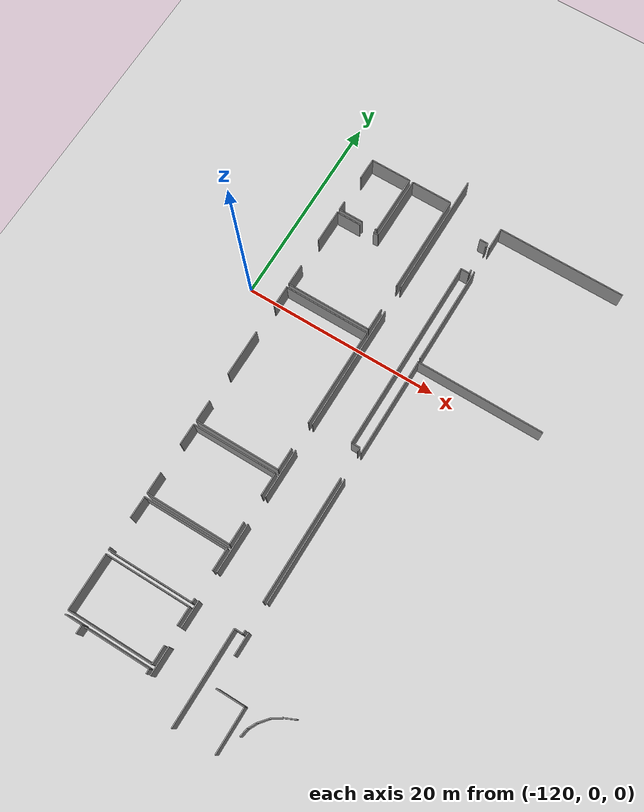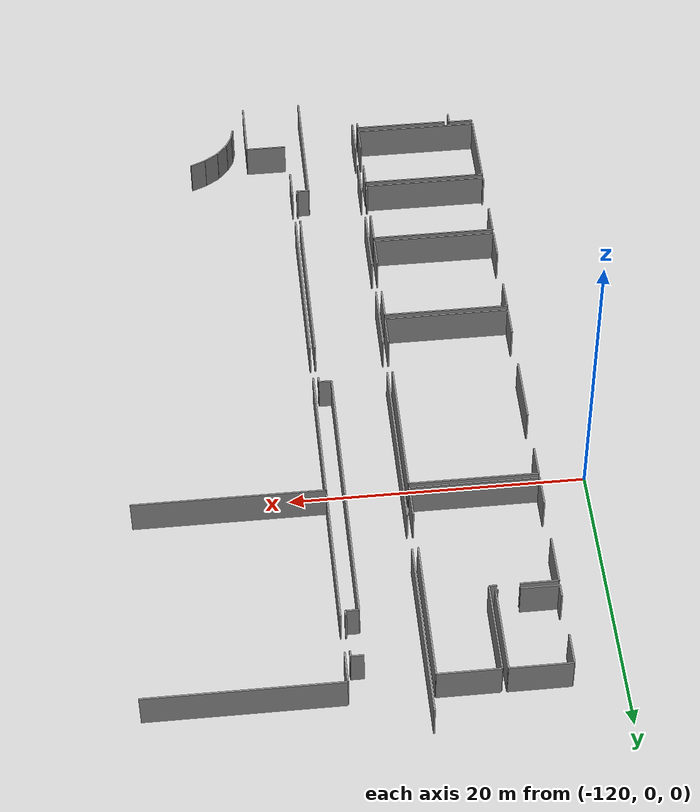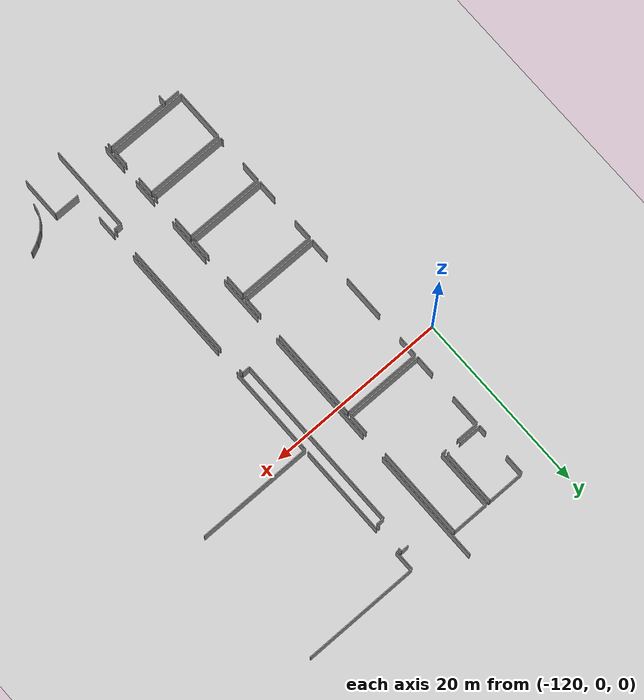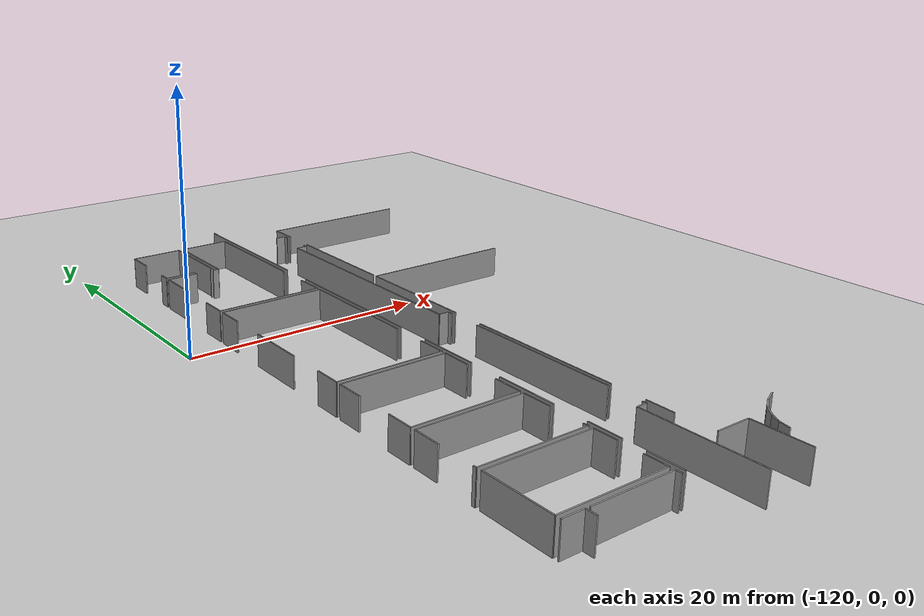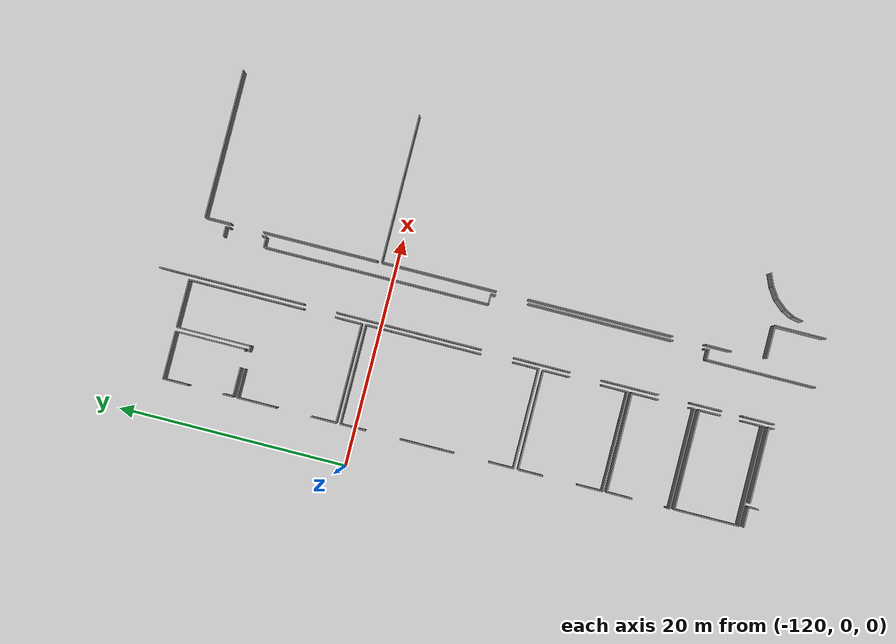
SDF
<sdf version="1.6">
 <world name="default">
  <model name="ground_plane">
   <static>1</static>
   <link name="link">
    <collision name="collision">
     <geometry><plane><normal>0 0 1</normal><size>100 100</size></plane></geometry>
     <surface><friction><ode><mu>100</mu><mu2>50</mu2></ode></friction></surface>
    </collision>
    <visual name="visual">
     <cast_shadows>0</cast_shadows>
     <geometry><plane><normal>0 0 1</normal><size>100 100</size></plane></geometry>
     <material>
      <script><uri>file://media/materials/scripts/gazebo.material</uri><name>Gazebo/Grey</name></script>
     </material>
    </visual>
   </link>
  </model>
  <model name="0510035519_A_40_1_102">
   <static>1</static>
   <link name="Wall_317">
    <collision name="Wall_317_Collision">
     <geometry><box><size>4.14436395984 0.1 2.5</size></box></geometry>
     <pose>2.07218197992 0 1.25 0 0 0</pose>
    </collision>
    <visual name="Wall_317_Visual">
     <pose>2.07218197992 0 1.25 0 0 0</pose>
     <geometry><box><size>4.14436395984 0.1 2.5</size></box></geometry>
     <material>
      <script><uri>file://media/materials/scripts/gazebo.material</uri><name>Gazebo/Grey</name></script>
      <ambient>1 1 1 1</ambient>
     </material>
    </visual>
    <pose>0.0147413902656 -51.9951709239 0 0 0 0.0</pose>
   </link>
   <link name="Wall_318">
    <collision name="Wall_318_Collision">
     <geometry><box><size>6.11538950311 0.1 2.5</size></box></geometry>
     <pose>3.05769475156 0 1.25 0 0 0</pose>
    </collision>
    <visual name="Wall_318_Visual">
     <pose>3.05769475156 0 1.25 0 0 0</pose>
     <geometry><box><size>6.11538950311 0.1 2.5</size></box></geometry>
     <material>
      <script><uri>file://media/materials/scripts/gazebo.material</uri><name>Gazebo/Grey</name></script>
      <ambient>1 1 1 1</ambient>
     </material>
    </visual>
    <pose>4.15910535011 -51.9951709239 0 0 0 -1.57079632679</pose>
   </link>
   <link name="Wall_319">
    <collision name="Wall_319_Collision">
     <geometry><box><size>0.174609226077 0.1 2.5</size></box></geometry>
     <pose>0.0873046130385 0 1.25 0 0 0</pose>
    </collision>
    <visual name="Wall_319_Visual">
     <pose>0.0873046130385 0 1.25 0 0 0</pose>
     <geometry><box><size>0.174609226077 0.1 2.5</size></box></geometry>
     <material>
      <script><uri>file://media/materials/scripts/gazebo.material</uri><name>Gazebo/Grey</name></script>
      <ambient>1 1 1 1</ambient>
     </material>
    </visual>
    <pose>4.15910535011 -58.110560427 0 0 0 3.14159265359</pose>
   </link>
   <link name="Wall_320">
    <collision name="Wall_320_Collision">
     <geometry><box><size>2.53577328758 0.1 2.5</size></box></geometry>
     <pose>1.26788664379 0 1.25 0 0 0</pose>
    </collision>
    <visual name="Wall_320_Visual">
     <pose>1.26788664379 0 1.25 0 0 0</pose>
     <geometry><box><size>2.53577328758 0.1 2.5</size></box></geometry>
     <material>
      <script><uri>file://media/materials/scripts/gazebo.material</uri><name>Gazebo/Grey</name></script>
      <ambient>1 1 1 1</ambient>
     </material>
    </visual>
    <pose>2.54314398272 -58.110560427 0 0 0 3.14159265359</pose>
   </link>
   <link name="Wall_321">
    <collision name="Wall_321_Collision">
     <geometry><box><size>0.91904943449 0.1 2.5</size></box></geometry>
     <pose>0.459524717245 0 1.25 0 0 0</pose>
    </collision>
    <visual name="Wall_321_Visual">
     <pose>0.459524717245 0 1.25 0 0 0</pose>
     <geometry><box><size>0.91904943449 0.1 2.5</size></box></geometry>
     <material>
      <script><uri>file://media/materials/scripts/gazebo.material</uri><name>Gazebo/Grey</name></script>
      <ambient>1 1 1 1</ambient>
     </material>
    </visual>
    <pose>0.0073706951328 -58.110560427 0 0 0 1.57079632679</pose>
   </link>
   <link name="Wall_322">
    <collision name="Wall_322_Collision">
     <geometry><box><size>2.16317194053 0.1 2.5</size></box></geometry>
     <pose>1.08158597026 0 1.25 0 0 0</pose>
    </collision>
    <visual name="Wall_322_Visual">
     <pose>1.08158597026 0 1.25 0 0 0</pose>
     <geometry><box><size>2.16317194053 0.1 2.5</size></box></geometry>
     <material>
      <script><uri>file://media/materials/scripts/gazebo.material</uri><name>Gazebo/Grey</name></script>
      <ambient>1 1 1 1</ambient>
     </material>
    </visual>
    <pose>0.0073706951328 -54.1814715974 0 0 0 1.57079632679</pose>
   </link>
   <link name="Wall_323">
    <collision name="Wall_323_Collision">
     <geometry><box><size>0.0242747901548 0.1 2.5</size></box></geometry>
     <pose>0.0121373950774 0 1.25 0 0 0</pose>
    </collision>
    <visual name="Wall_323_Visual">
     <pose>0.0121373950774 0 1.25 0 0 0</pose>
     <geometry><box><size>0.0242747901548 0.1 2.5</size></box></geometry>
     <material>
      <script><uri>file://media/materials/scripts/gazebo.material</uri><name>Gazebo/Grey</name></script>
      <ambient>1 1 1 1</ambient>
     </material>
    </visual>
    <pose>0.0073706951328 -52.0182996569 0 0 0 1.26229003106</pose>
   </link>
   <link name="Wall_324">
    <collision name="Wall_324_Collision">
     <geometry><box><size>2.18782564494 0.1 2.5</size></box></geometry>
     <pose>1.09391282247 0 1.25 0 0 0</pose>
    </collision>
    <visual name="Wall_324_Visual">
     <pose>1.09391282247 0 1.25 0 0 0</pose>
     <geometry><box><size>2.18782564494 0.1 2.5</size></box></geometry>
     <material>
      <script><uri>file://media/materials/scripts/gazebo.material</uri><name>Gazebo/Grey</name></script>
      <ambient>1 1 1 1</ambient>
     </material>
    </visual>
    <pose>0.00864150463845 -67.1170415555 0 0 0 1.57079632679</pose>
   </link>
   <link name="Wall_325">
    <collision name="Wall_325_Collision">
     <geometry><box><size>3.44592705553 0.1 2.5</size></box></geometry>
     <pose>1.72296352777 0 1.25 0 0 0</pose>
    </collision>
    <visual name="Wall_325_Visual">
     <pose>1.72296352777 0 1.25 0 0 0</pose>
     <geometry><box><size>3.44592705553 0.1 2.5</size></box></geometry>
     <material>
      <script><uri>file://media/materials/scripts/gazebo.material</uri><name>Gazebo/Grey</name></script>
      <ambient>1 1 1 1</ambient>
     </material>
    </visual>
    <pose>0.00864150463845 -61.9308679629 0 0 0 1.57079632679</pose>
   </link>
   <link name="Wall_326">
    <collision name="Wall_326_Collision">
     <geometry><box><size>2.52535264964 0.1 2.5</size></box></geometry>
     <pose>1.26267632482 0 1.25 0 0 0</pose>
    </collision>
    <visual name="Wall_326_Visual">
     <pose>1.26267632482 0 1.25 0 0 0</pose>
     <geometry><box><size>2.52535264964 0.1 2.5</size></box></geometry>
     <material>
      <script><uri>file://media/materials/scripts/gazebo.material</uri><name>Gazebo/Grey</name></script>
      <ambient>1 1 1 1</ambient>
     </material>
    </visual>
    <pose>0.00864150463845 -58.4849409074 0 0 0 0.0</pose>
   </link>
   <link name="Wall_327">
    <collision name="Wall_327_Collision">
     <geometry><box><size>0.508323802262 0.1 2.5</size></box></geometry>
     <pose>0.254161901131 0 1.25 0 0 0</pose>
    </collision>
    <visual name="Wall_327_Visual">
     <pose>0.254161901131 0 1.25 0 0 0</pose>
     <geometry><box><size>0.508323802262 0.1 2.5</size></box></geometry>
     <material>
      <script><uri>file://media/materials/scripts/gazebo.material</uri><name>Gazebo/Grey</name></script>
      <ambient>1 1 1 1</ambient>
     </material>
    </visual>
    <pose>4.0218579235 -58.4849409074 0 0 0 0.0</pose>
   </link>
   <link name="Wall_328">
    <collision name="Wall_328_Collision">
     <geometry><box><size>6.48087431694 0.1 2.5</size></box></geometry>
     <pose>3.24043715847 0 1.25 0 0 0</pose>
    </collision>
    <visual name="Wall_328_Visual">
     <pose>3.24043715847 0 1.25 0 0 0</pose>
     <geometry><box><size>6.48087431694 0.1 2.5</size></box></geometry>
     <material>
      <script><uri>file://media/materials/scripts/gazebo.material</uri><name>Gazebo/Grey</name></script>
      <ambient>1 1 1 1</ambient>
     </material>
    </visual>
    <pose>4.53018172576 -58.4849409074 0 0 0 1.57079632679</pose>
   </link>
   <link name="Wall_329">
    <collision name="Wall_329_Collision">
     <geometry><box><size>4.15427627399 0.1 2.5</size></box></geometry>
     <pose>2.07713813699 0 1.25 0 0 0</pose>
    </collision>
    <visual name="Wall_329_Visual">
     <pose>2.07713813699 0 1.25 0 0 0</pose>
     <geometry><box><size>4.15427627399 0.1 2.5</size></box></geometry>
     <material>
      <script><uri>file://media/materials/scripts/gazebo.material</uri><name>Gazebo/Grey</name></script>
      <ambient>1 1 1 1</ambient>
     </material>
    </visual>
    <pose>4.53018172576 -52.0040665904 0 0 0 0.0</pose>
   </link>
   <link name="Wall_330">
    <collision name="Wall_330_Collision">
     <geometry><box><size>10.0604905325 0.1 2.5</size></box></geometry>
     <pose>5.03024526623 0 1.25 0 0 0</pose>
    </collision>
    <visual name="Wall_330_Visual">
     <pose>5.03024526623 0 1.25 0 0 0</pose>
     <geometry><box><size>10.0604905325 0.1 2.5</size></box></geometry>
     <material>
      <script><uri>file://media/materials/scripts/gazebo.material</uri><name>Gazebo/Grey</name></script>
      <ambient>1 1 1 1</ambient>
     </material>
    </visual>
    <pose>8.68445799975 -52.0040665904 0 0 0 -1.57079632679</pose>
   </link>
   <link name="Wall_331">
    <collision name="Wall_331_Collision">
     <geometry><box><size>2.29457364341 0.1 2.5</size></box></geometry>
     <pose>1.14728682171 0 1.25 0 0 0</pose>
    </collision>
    <visual name="Wall_331_Visual">
     <pose>1.14728682171 0 1.25 0 0 0</pose>
     <geometry><box><size>2.29457364341 0.1 2.5</size></box></geometry>
     <material>
      <script><uri>file://media/materials/scripts/gazebo.material</uri><name>Gazebo/Grey</name></script>
      <ambient>1 1 1 1</ambient>
     </material>
    </visual>
    <pose>8.68445799975 -64.830346931 0 0 0 -1.57079632679</pose>
   </link>
   <link name="Wall_332">
    <collision name="Wall_332_Collision">
     <geometry><box><size>8.67582007281 0.1 2.5</size></box></geometry>
     <pose>4.3379100364 0 1.25 0 0 0</pose>
    </collision>
    <visual name="Wall_332_Visual">
     <pose>4.3379100364 0 1.25 0 0 0</pose>
     <geometry><box><size>8.67582007281 0.1 2.5</size></box></geometry>
     <material>
      <script><uri>file://media/materials/scripts/gazebo.material</uri><name>Gazebo/Grey</name></script>
      <ambient>1 1 1 1</ambient>
     </material>
    </visual>
    <pose>8.68445799975 -67.1249205744 0 0 0 3.14068449506</pose>
   </link>
   <link name="Wall_333">
    <collision name="Wall_333_Collision">
     <geometry><box><size>2.16978014996 0.1 2.5</size></box></geometry>
     <pose>1.08489007498 0 1.25 0 0 0</pose>
    </collision>
    <visual name="Wall_333_Visual">
     <pose>1.08489007498 0 1.25 0 0 0</pose>
     <geometry><box><size>2.16978014996 0.1 2.5</size></box></geometry>
     <material>
      <script><uri>file://media/materials/scripts/gazebo.material</uri><name>Gazebo/Grey</name></script>
      <ambient>1 1 1 1</ambient>
     </material>
    </visual>
    <pose>0.0144872283645 -82.6303215148 0 0 0 1.57079632679</pose>
   </link>
   <link name="Wall_334">
    <collision name="Wall_334_Collision">
     <geometry><box><size>4.77214385564 0.1 2.5</size></box></geometry>
     <pose>2.38607192782 0 1.25 0 0 0</pose>
    </collision>
    <visual name="Wall_334_Visual">
     <pose>2.38607192782 0 1.25 0 0 0</pose>
     <geometry><box><size>4.77214385564 0.1 2.5</size></box></geometry>
     <material>
      <script><uri>file://media/materials/scripts/gazebo.material</uri><name>Gazebo/Grey</name></script>
      <ambient>1 1 1 1</ambient>
     </material>
    </visual>
    <pose>0.0144872283645 -77.4644808743 0 0 0 1.57079632679</pose>
   </link>
   <link name="Wall_335">
    <collision name="Wall_335_Collision">
     <geometry><box><size>2.20841275893 0.1 2.5</size></box></geometry>
     <pose>1.10420637946 0 1.25 0 0 0</pose>
    </collision>
    <visual name="Wall_335_Visual">
     <pose>1.10420637946 0 1.25 0 0 0</pose>
     <geometry><box><size>2.20841275893 0.1 2.5</size></box></geometry>
     <material>
      <script><uri>file://media/materials/scripts/gazebo.material</uri><name>Gazebo/Grey</name></script>
      <ambient>1 1 1 1</ambient>
     </material>
    </visual>
    <pose>0.0144872283645 -69.6980556615 0 0 0 1.57079632679</pose>
   </link>
   <link name="Wall_336">
    <collision name="Wall_336_Collision">
     <geometry><box><size>8.69360782819 0.1 2.5</size></box></geometry>
     <pose>4.34680391409 0 1.25 0 0 0</pose>
    </collision>
    <visual name="Wall_336_Visual">
     <pose>4.34680391409 0 1.25 0 0 0</pose>
     <geometry><box><size>8.69360782819 0.1 2.5</size></box></geometry>
     <material>
      <script><uri>file://media/materials/scripts/gazebo.material</uri><name>Gazebo/Grey</name></script>
      <ambient>1 1 1 1</ambient>
     </material>
    </visual>
    <pose>0.0144872283645 -67.4896429025 0 0 0 0.0</pose>
   </link>
   <link name="Wall_337">
    <collision name="Wall_337_Collision">
     <geometry><box><size>10.0930232558 0.1 2.5</size></box></geometry>
     <pose>5.04651162791 0 1.25 0 0 0</pose>
    </collision>
    <visual name="Wall_337_Visual">
     <pose>5.04651162791 0 1.25 0 0 0</pose>
     <geometry><box><size>10.0930232558 0.1 2.5</size></box></geometry>
     <material>
      <script><uri>file://media/materials/scripts/gazebo.material</uri><name>Gazebo/Grey</name></script>
      <ambient>1 1 1 1</ambient>
     </material>
    </visual>
    <pose>8.70809505655 -67.4896429025 0 0 0 -1.57079632679</pose>
   </link>
   <link name="Wall_338">
    <collision name="Wall_338_Collision">
     <geometry><box><size>2.26458253908 0.1 2.5</size></box></geometry>
     <pose>1.13229126954 0 1.25 0 0 0</pose>
    </collision>
    <visual name="Wall_338_Visual">
     <pose>1.13229126954 0 1.25 0 0 0</pose>
     <geometry><box><size>2.26458253908 0.1 2.5</size></box></geometry>
     <material>
      <script><uri>file://media/materials/scripts/gazebo.material</uri><name>Gazebo/Grey</name></script>
      <ambient>1 1 1 1</ambient>
     </material>
    </visual>
    <pose>8.70809505655 -80.3637056805 0 0 0 -1.57079632679</pose>
   </link>
   <link name="Wall_339">
    <collision name="Wall_339_Collision">
     <geometry><box><size>8.69360806596 0.1 2.5</size></box></geometry>
     <pose>4.34680403298 0 1.25 0 0 0</pose>
    </collision>
    <visual name="Wall_339_Visual">
     <pose>4.34680403298 0 1.25 0 0 0</pose>
     <geometry><box><size>8.69360806596 0.1 2.5</size></box></geometry>
     <material>
      <script><uri>file://media/materials/scripts/gazebo.material</uri><name>Gazebo/Grey</name></script>
      <ambient>1 1 1 1</ambient>
     </material>
    </visual>
    <pose>8.70809505655 -82.6282882196 0 0 0 -3.14135876966</pose>
   </link>
   <link name="Wall_340">
    <collision name="Wall_340_Collision">
     <geometry><box><size>2.15935951201 0.1 2.5</size></box></geometry>
     <pose>1.079679756 0 1.25 0 0 0</pose>
    </collision>
    <visual name="Wall_340_Visual">
     <pose>1.079679756 0 1.25 0 0 0</pose>
     <geometry><box><size>2.15935951201 0.1 2.5</size></box></geometry>
     <material>
      <script><uri>file://media/materials/scripts/gazebo.material</uri><name>Gazebo/Grey</name></script>
      <ambient>1 1 1 1</ambient>
     </material>
    </visual>
    <pose>0.00559156182489 -90.3964925658 0 0 0 1.57079632679</pose>
   </link>
   <link name="Wall_341">
    <collision name="Wall_341_Collision">
     <geometry><box><size>2.17155928326 0.1 2.5</size></box></geometry>
     <pose>1.08577964163 0 1.25 0 0 0</pose>
    </collision>
    <visual name="Wall_341_Visual">
     <pose>1.08577964163 0 1.25 0 0 0</pose>
     <geometry><box><size>2.17155928326 0.1 2.5</size></box></geometry>
     <material>
      <script><uri>file://media/materials/scripts/gazebo.material</uri><name>Gazebo/Grey</name></script>
      <ambient>1 1 1 1</ambient>
     </material>
    </visual>
    <pose>0.00559156182489 -85.2021857923 0 0 0 1.57079632679</pose>
   </link>
   <link name="Wall_342">
    <collision name="Wall_342_Collision">
     <geometry><box><size>8.68166221883 0.1 2.5</size></box></geometry>
     <pose>4.34083110942 0 1.25 0 0 0</pose>
    </collision>
    <visual name="Wall_342_Visual">
     <pose>4.34083110942 0 1.25 0 0 0</pose>
     <geometry><box><size>8.68166221883 0.1 2.5</size></box></geometry>
     <material>
      <script><uri>file://media/materials/scripts/gazebo.material</uri><name>Gazebo/Grey</name></script>
      <ambient>1 1 1 1</ambient>
     </material>
    </visual>
    <pose>0.00559156182489 -83.0306265091 0 0 0 0.0</pose>
   </link>
   <link name="Wall_343">
    <collision name="Wall_343_Collision">
     <geometry><box><size>2.31134832889 0.1 2.5</size></box></geometry>
     <pose>1.15567416444 0 1.25 0 0 0</pose>
    </collision>
    <visual name="Wall_343_Visual">
     <pose>1.15567416444 0 1.25 0 0 0</pose>
     <geometry><box><size>2.31134832889 0.1 2.5</size></box></geometry>
     <material>
      <script><uri>file://media/materials/scripts/gazebo.material</uri><name>Gazebo/Grey</name></script>
      <ambient>1 1 1 1</ambient>
     </material>
    </visual>
    <pose>8.68725378066 -83.0306265091 0 0 0 -1.57079632679</pose>
   </link>
   <link name="Wall_344">
    <collision name="Wall_344_Collision">
     <geometry><box><size>2.29991104333 0.1 2.5</size></box></geometry>
     <pose>1.14995552167 0 1.25 0 0 0</pose>
    </collision>
    <visual name="Wall_344_Visual">
     <pose>1.14995552167 0 1.25 0 0 0</pose>
     <geometry><box><size>2.29991104333 0.1 2.5</size></box></geometry>
     <material>
      <script><uri>file://media/materials/scripts/gazebo.material</uri><name>Gazebo/Grey</name></script>
      <ambient>1 1 1 1</ambient>
     </material>
    </visual>
    <pose>8.68725378066 -88.1253018173 0 0 0 -1.57079632679</pose>
   </link>
   <link name="Wall_345">
    <collision name="Wall_345_Collision">
     <geometry><box><size>8.68170972431 0.1 2.5</size></box></geometry>
     <pose>4.34085486216 0 1.25 0 0 0</pose>
    </collision>
    <visual name="Wall_345_Visual">
     <pose>4.34085486216 0 1.25 0 0 0</pose>
     <geometry><box><size>8.68170972431 0.1 2.5</size></box></geometry>
     <material>
      <script><uri>file://media/materials/scripts/gazebo.material</uri><name>Gazebo/Grey</name></script>
      <ambient>1 1 1 1</ambient>
     </material>
    </visual>
    <pose>8.68725378066 -90.4252128606 0 0 0 3.13828450944</pose>
   </link>
   <link name="Wall_346">
    <collision name="Wall_346_Collision">
     <geometry><box><size>8.67200406659 0.1 2.5</size></box></geometry>
     <pose>4.3360020333 0 1.25 0 0 0</pose>
    </collision>
    <visual name="Wall_346_Visual">
     <pose>4.3360020333 0 1.25 0 0 0</pose>
     <geometry><box><size>8.67200406659 0.1 2.5</size></box></geometry>
     <material>
      <script><uri>file://media/materials/scripts/gazebo.material</uri><name>Gazebo/Grey</name></script>
      <ambient>1 1 1 1</ambient>
     </material>
    </visual>
    <pose>0.0190621425848 -90.7767187699 0 0 0 0.0</pose>
   </link>
   <link name="Wall_347">
    <collision name="Wall_347_Collision">
     <geometry><box><size>2.30067352904 0.1 2.5</size></box></geometry>
     <pose>1.15033676452 0 1.25 0 0 0</pose>
    </collision>
    <visual name="Wall_347_Visual">
     <pose>1.15033676452 0 1.25 0 0 0</pose>
     <geometry><box><size>2.30067352904 0.1 2.5</size></box></geometry>
     <material>
      <script><uri>file://media/materials/scripts/gazebo.material</uri><name>Gazebo/Grey</name></script>
      <ambient>1 1 1 1</ambient>
     </material>
    </visual>
    <pose>8.69106620918 -90.7767187699 0 0 0 -1.57079632679</pose>
   </link>
   <link name="Wall_348">
    <collision name="Wall_348_Collision">
     <geometry><box><size>0.407167365612 0.1 2.5</size></box></geometry>
     <pose>0.203583682806 0 1.25 0 0 0</pose>
    </collision>
    <visual name="Wall_348_Visual">
     <pose>0.203583682806 0 1.25 0 0 0</pose>
     <geometry><box><size>0.407167365612 0.1 2.5</size></box></geometry>
     <material>
      <script><uri>file://media/materials/scripts/gazebo.material</uri><name>Gazebo/Grey</name></script>
      <ambient>1 1 1 1</ambient>
     </material>
    </visual>
    <pose>8.69106620918 -95.8563985259 0 0 0 -1.57079632679</pose>
   </link>
   <link name="Wall_349">
    <collision name="Wall_349_Collision">
     <geometry><box><size>8.68369551404 0.1 2.5</size></box></geometry>
     <pose>4.34184775702 0 1.25 0 0 0</pose>
    </collision>
    <visual name="Wall_349_Visual">
     <pose>4.34184775702 0 1.25 0 0 0</pose>
     <geometry><box><size>8.68369551404 0.1 2.5</size></box></geometry>
     <material>
      <script><uri>file://media/materials/scripts/gazebo.material</uri><name>Gazebo/Grey</name></script>
      <ambient>1 1 1 1</ambient>
     </material>
    </visual>
    <pose>8.69106620918 -96.2635658915 0 0 0 3.14159265359</pose>
   </link>
   <link name="Wall_350">
    <collision name="Wall_350_Collision">
     <geometry><box><size>0.274494853222 0.1 2.5</size></box></geometry>
     <pose>0.137247426611 0 1.25 0 0 0</pose>
    </collision>
    <visual name="Wall_350_Visual">
     <pose>0.137247426611 0 1.25 0 0 0</pose>
     <geometry><box><size>0.274494853222 0.1 2.5</size></box></geometry>
     <material>
      <script><uri>file://media/materials/scripts/gazebo.material</uri><name>Gazebo/Grey</name></script>
      <ambient>1 1 1 1</ambient>
     </material>
    </visual>
    <pose>0.0073706951328 -96.2635658915 0 0 0 1.57079632679</pose>
   </link>
   <link name="Wall_351">
    <collision name="Wall_351_Collision">
     <geometry><box><size>2.18506114254 0.1 2.5</size></box></geometry>
     <pose>1.09253057127 0 1.25 0 0 0</pose>
    </collision>
    <visual name="Wall_351_Visual">
     <pose>1.09253057127 0 1.25 0 0 0</pose>
     <geometry><box><size>2.18506114254 0.1 2.5</size></box></geometry>
     <material>
      <script><uri>file://media/materials/scripts/gazebo.material</uri><name>Gazebo/Grey</name></script>
      <ambient>1 1 1 1</ambient>
     </material>
    </visual>
    <pose>0.0073706951328 -92.9617486339 0 0 0 1.56544567412</pose>
   </link>
   <link name="Wall_352">
    <collision name="Wall_352_Collision">
     <geometry><box><size>5.62028211971 0.1 2.5</size></box></geometry>
     <pose>2.81014105986 0 1.25 0 0 0</pose>
    </collision>
    <visual name="Wall_352_Visual">
     <pose>2.81014105986 0 1.25 0 0 0</pose>
     <geometry><box><size>5.62028211971 0.1 2.5</size></box></geometry>
     <material>
      <script><uri>file://media/materials/scripts/gazebo.material</uri><name>Gazebo/Grey</name></script>
      <ambient>1 1 1 1</ambient>
     </material>
    </visual>
    <pose>0.0246537044097 -102.282628034 0 0 0 1.57079632679</pose>
   </link>
   <link name="Wall_353">
    <collision name="Wall_353_Collision">
     <geometry><box><size>8.67581649511 0.1 2.5</size></box></geometry>
     <pose>4.33790824755 0 1.25 0 0 0</pose>
    </collision>
    <visual name="Wall_353_Visual">
     <pose>4.33790824755 0 1.25 0 0 0</pose>
     <geometry><box><size>8.67581649511 0.1 2.5</size></box></geometry>
     <material>
      <script><uri>file://media/materials/scripts/gazebo.material</uri><name>Gazebo/Grey</name></script>
      <ambient>1 1 1 1</ambient>
     </material>
    </visual>
    <pose>0.0246537044097 -96.6623459143 0 0 0 0.0</pose>
   </link>
   <link name="Wall_354">
    <collision name="Wall_354_Collision">
     <geometry><box><size>1.8642775448 0.1 2.5</size></box></geometry>
     <pose>0.932138772398 0 1.25 0 0 0</pose>
    </collision>
    <visual name="Wall_354_Visual">
     <pose>0.932138772398 0 1.25 0 0 0</pose>
     <geometry><box><size>1.8642775448 0.1 2.5</size></box></geometry>
     <material>
      <script><uri>file://media/materials/scripts/gazebo.material</uri><name>Gazebo/Grey</name></script>
      <ambient>1 1 1 1</ambient>
     </material>
    </visual>
    <pose>8.70047019952 -96.6623459143 0 0 0 -1.57079632679</pose>
   </link>
   <link name="Wall_355">
    <collision name="Wall_355_Collision">
     <geometry><box><size>1.82793239293 0.1 2.5</size></box></geometry>
     <pose>0.913966196467 0 1.25 0 0 0</pose>
    </collision>
    <visual name="Wall_355_Visual">
     <pose>0.913966196467 0 1.25 0 0 0</pose>
     <geometry><box><size>1.82793239293 0.1 2.5</size></box></geometry>
     <material>
      <script><uri>file://media/materials/scripts/gazebo.material</uri><name>Gazebo/Grey</name></script>
      <ambient>1 1 1 1</ambient>
     </material>
    </visual>
    <pose>8.70047019952 -100.448849917 0 0 0 -1.57079632679</pose>
   </link>
   <link name="Wall_356">
    <collision name="Wall_356_Collision">
     <geometry><box><size>8.67581846452 0.1 2.5</size></box></geometry>
     <pose>4.33790923226 0 1.25 0 0 0</pose>
    </collision>
    <visual name="Wall_356_Visual">
     <pose>4.33790923226 0 1.25 0 0 0</pose>
     <geometry><box><size>8.67581846452 0.1 2.5</size></box></geometry>
     <material>
      <script><uri>file://media/materials/scripts/gazebo.material</uri><name>Gazebo/Grey</name></script>
      <ambient>1 1 1 1</ambient>
     </material>
    </visual>
    <pose>8.70047019952 -102.27678231 0 0 0 -3.14091885847</pose>
   </link>
   <link name="Wall_357">
    <collision name="Wall_357_Collision">
     <geometry><box><size>6.60948023891 0.1 2.5</size></box></geometry>
     <pose>3.30474011946 0 1.25 0 0 0</pose>
    </collision>
    <visual name="Wall_357_Visual">
     <pose>3.30474011946 0 1.25 0 0 0</pose>
     <geometry><box><size>6.60948023891 0.1 2.5</size></box></geometry>
     <material>
      <script><uri>file://media/materials/scripts/gazebo.material</uri><name>Gazebo/Grey</name></script>
      <ambient>1 1 1 1</ambient>
     </material>
    </visual>
    <pose>2.09429406532 -102.707586733 0 0 0 0.0</pose>
   </link>
   <link name="Wall_358">
    <collision name="Wall_358_Collision">
     <geometry><box><size>0.467912059982 0.1 2.5</size></box></geometry>
     <pose>0.233956029991 0 1.25 0 0 0</pose>
    </collision>
    <visual name="Wall_358_Visual">
     <pose>0.233956029991 0 1.25 0 0 0</pose>
     <geometry><box><size>0.467912059982 0.1 2.5</size></box></geometry>
     <material>
      <script><uri>file://media/materials/scripts/gazebo.material</uri><name>Gazebo/Grey</name></script>
      <ambient>1 1 1 1</ambient>
     </material>
    </visual>
    <pose>8.70377430423 -102.707586733 0 0 0 -1.57079632679</pose>
   </link>
   <link name="Wall_366">
    <collision name="Wall_366_Collision">
     <geometry><box><size>1.74405896556 0.1 2.5</size></box></geometry>
     <pose>0.872029482781 0 1.25 0 0 0</pose>
    </collision>
    <visual name="Wall_366_Visual">
     <pose>0.872029482781 0 1.25 0 0 0</pose>
     <geometry><box><size>1.74405896556 0.1 2.5</size></box></geometry>
     <material>
      <script><uri>file://media/materials/scripts/gazebo.material</uri><name>Gazebo/Grey</name></script>
      <ambient>1 1 1 1</ambient>
     </material>
    </visual>
    <pose>0.0223662472995 -102.681662219 0 0 0 0.0</pose>
   </link>
   <link name="Wall_367">
    <collision name="Wall_367_Collision">
     <geometry><box><size>0.855254797306 0.1 2.5</size></box></geometry>
     <pose>0.427627398653 0 1.25 0 0 0</pose>
    </collision>
    <visual name="Wall_367_Visual">
     <pose>0.427627398653 0 1.25 0 0 0</pose>
     <geometry><box><size>0.855254797306 0.1 2.5</size></box></geometry>
     <material>
      <script><uri>file://media/materials/scripts/gazebo.material</uri><name>Gazebo/Grey</name></script>
      <ambient>1 1 1 1</ambient>
     </material>
    </visual>
    <pose>1.76642521286 -102.681662219 0 0 0 -1.57079632679</pose>
   </link>
   <link name="Wall_380">
    <collision name="Wall_380_Collision">
     <geometry><box><size>2.25263692972 0.1 2.5</size></box></geometry>
     <pose>1.12631846486 0 1.25 0 0 0</pose>
    </collision>
    <visual name="Wall_380_Visual">
     <pose>1.12631846486 0 1.25 0 0 0</pose>
     <geometry><box><size>2.25263692972 0.1 2.5</size></box></geometry>
     <material>
      <script><uri>file://media/materials/scripts/gazebo.material</uri><name>Gazebo/Grey</name></script>
      <ambient>1 1 1 1</ambient>
     </material>
    </visual>
    <pose>14.1959588258 -98.0914982844 0 0 0 1.57079632679</pose>
   </link>
   <link name="Wall_381">
    <collision name="Wall_381_Collision">
     <geometry><box><size>12.6862371331 0.1 2.5</size></box></geometry>
     <pose>6.34311856653 0 1.25 0 0 0</pose>
    </collision>
    <visual name="Wall_381_Visual">
     <pose>6.34311856653 0 1.25 0 0 0</pose>
     <geometry><box><size>12.6862371331 0.1 2.5</size></box></geometry>
     <material>
      <script><uri>file://media/materials/scripts/gazebo.material</uri><name>Gazebo/Grey</name></script>
      <ambient>1 1 1 1</ambient>
     </material>
    </visual>
    <pose>14.1959588258 -92.9932647096 0 0 0 1.57079632679</pose>
   </link>
   <link name="Wall_382">
    <collision name="Wall_382_Collision">
     <geometry><box><size>10.0620155039 0.1 2.5</size></box></geometry>
     <pose>5.03100775194 0 1.25 0 0 0</pose>
    </collision>
    <visual name="Wall_382_Visual">
     <pose>5.03100775194 0 1.25 0 0 0</pose>
     <geometry><box><size>10.0620155039 0.1 2.5</size></box></geometry>
     <material>
      <script><uri>file://media/materials/scripts/gazebo.material</uri><name>Gazebo/Grey</name></script>
      <ambient>1 1 1 1</ambient>
     </material>
    </visual>
    <pose>14.1959588258 -77.5356462066 0 0 0 1.57079632679</pose>
   </link>
   <link name="Wall_383">
    <collision name="Wall_383_Collision">
     <geometry><box><size>12.9243868344 0.1 2.5</size></box></geometry>
     <pose>6.46219341721 0 1.25 0 0 0</pose>
    </collision>
    <visual name="Wall_383_Visual">
     <pose>6.46219341721 0 1.25 0 0 0</pose>
     <geometry><box><size>12.9243868344 0.1 2.5</size></box></geometry>
     <material>
      <script><uri>file://media/materials/scripts/gazebo.material</uri><name>Gazebo/Grey</name></script>
      <ambient>1 1 1 1</ambient>
     </material>
    </visual>
    <pose>14.1959588258 -67.4736307028 0 0 0 0.0</pose>
   </link>
   <link name="Wall_390">
    <collision name="Wall_390_Collision">
     <geometry><box><size>12.9309950438 0.1 2.5</size></box></geometry>
     <pose>6.46549752192 0 1.25 0 0 0</pose>
    </collision>
    <visual name="Wall_390_Visual">
     <pose>6.46549752192 0 1.25 0 0 0</pose>
     <geometry><box><size>12.9309950438 0.1 2.5</size></box></geometry>
     <material>
      <script><uri>file://media/materials/scripts/gazebo.material</uri><name>Gazebo/Grey</name></script>
      <ambient>1 1 1 1</ambient>
     </material>
    </visual>
    <pose>14.1941796925 -51.9758546194 0 0 0 0.0</pose>
   </link>
   <link name="Wall_395">
    <collision name="Wall_395_Collision">
     <geometry><box><size>10.0587113992 0.1 2.5</size></box></geometry>
     <pose>5.02935569958 0 1.25 0 0 0</pose>
    </collision>
    <visual name="Wall_395_Visual">
     <pose>5.02935569958 0 1.25 0 0 0</pose>
     <geometry><box><size>10.0587113992 0.1 2.5</size></box></geometry>
     <material>
      <script><uri>file://media/materials/scripts/gazebo.material</uri><name>Gazebo/Grey</name></script>
      <ambient>1 1 1 1</ambient>
     </material>
    </visual>
    <pose>14.1832507307 -67.1277163553 0 0 0 1.57079632679</pose>
   </link>
   <link name="Wall_396">
    <collision name="Wall_396_Collision">
     <geometry><box><size>2.26178675816 0.1 2.5</size></box></geometry>
     <pose>1.13089337908 0 1.25 0 0 0</pose>
    </collision>
    <visual name="Wall_396_Visual">
     <pose>1.13089337908 0 1.25 0 0 0</pose>
     <geometry><box><size>2.26178675816 0.1 2.5</size></box></geometry>
     <material>
      <script><uri>file://media/materials/scripts/gazebo.material</uri><name>Gazebo/Grey</name></script>
      <ambient>1 1 1 1</ambient>
     </material>
    </visual>
    <pose>14.1832507307 -54.2317956538 0 0 0 1.57079632679</pose>
   </link>
   <link name="Wall_412">
    <collision name="Wall_412_Collision">
     <geometry><box><size>0.852713178295 0.1 2.5</size></box></geometry>
     <pose>0.426356589147 0 1.25 0 0 0</pose>
    </collision>
    <visual name="Wall_412_Visual">
     <pose>0.426356589147 0 1.25 0 0 0</pose>
     <geometry><box><size>0.852713178295 0.1 2.5</size></box></geometry>
     <material>
      <script><uri>file://media/materials/scripts/gazebo.material</uri><name>Gazebo/Grey</name></script>
      <ambient>1 1 1 1</ambient>
     </material>
    </visual>
    <pose>12.9830982336 -53.8968102681 0 0 0 0.0</pose>
   </link>
   <link name="Wall_413">
    <collision name="Wall_413_Collision">
     <geometry><box><size>0.404625746601 0.1 2.5</size></box></geometry>
     <pose>0.2023128733 0 1.25 0 0 0</pose>
    </collision>
    <visual name="Wall_413_Visual">
     <pose>0.2023128733 0 1.25 0 0 0</pose>
     <geometry><box><size>0.404625746601 0.1 2.5</size></box></geometry>
     <material>
      <script><uri>file://media/materials/scripts/gazebo.material</uri><name>Gazebo/Grey</name></script>
      <ambient>1 1 1 1</ambient>
     </material>
    </visual>
    <pose>13.8358114119 -53.8968102681 0 0 0 -1.57079632679</pose>
   </link>
   <link name="Wall_414">
    <collision name="Wall_414_Collision">
     <geometry><box><size>0.382513661202 0.1 2.5</size></box></geometry>
     <pose>0.191256830601 0 1.25 0 0 0</pose>
    </collision>
    <visual name="Wall_414_Visual">
     <pose>0.191256830601 0 1.25 0 0 0</pose>
     <geometry><box><size>0.382513661202 0.1 2.5</size></box></geometry>
     <material>
      <script><uri>file://media/materials/scripts/gazebo.material</uri><name>Gazebo/Grey</name></script>
      <ambient>1 1 1 1</ambient>
     </material>
    </visual>
    <pose>13.8358114119 -57.0618884229 0 0 0 -1.57079632679</pose>
   </link>
   <link name="Wall_415">
    <collision name="Wall_415_Collision">
     <geometry><box><size>0.870758673275 0.1 2.5</size></box></geometry>
     <pose>0.435379336637 0 1.25 0 0 0</pose>
    </collision>
    <visual name="Wall_415_Visual">
     <pose>0.435379336637 0 1.25 0 0 0</pose>
     <geometry><box><size>0.870758673275 0.1 2.5</size></box></geometry>
     <material>
      <script><uri>file://media/materials/scripts/gazebo.material</uri><name>Gazebo/Grey</name></script>
      <ambient>1 1 1 1</ambient>
     </material>
    </visual>
    <pose>13.8358114119 -57.4444020841 0 0 0 3.14159265359</pose>
   </link>
   <link name="Wall_416">
    <collision name="Wall_416_Collision">
     <geometry><box><size>19.6995806329 0.1 2.5</size></box></geometry>
     <pose>9.84979031643 0 1.25 0 0 0</pose>
    </collision>
    <visual name="Wall_416_Visual">
     <pose>9.84979031643 0 1.25 0 0 0</pose>
     <geometry><box><size>19.6995806329 0.1 2.5</size></box></geometry>
     <material>
      <script><uri>file://media/materials/scripts/gazebo.material</uri><name>Gazebo/Grey</name></script>
      <ambient>1 1 1 1</ambient>
     </material>
    </visual>
    <pose>12.9650527386 -57.4444020841 0 0 0 -1.57079632679</pose>
   </link>
   <link name="Wall_417">
    <collision name="Wall_417_Collision">
     <geometry><box><size>0.877621044605 0.1 2.5</size></box></geometry>
     <pose>0.438810522303 0 1.25 0 0 0</pose>
    </collision>
    <visual name="Wall_417_Visual">
     <pose>0.438810522303 0 1.25 0 0 0</pose>
     <geometry><box><size>0.877621044605 0.1 2.5</size></box></geometry>
     <material>
      <script><uri>file://media/materials/scripts/gazebo.material</uri><name>Gazebo/Grey</name></script>
      <ambient>1 1 1 1</ambient>
     </material>
    </visual>
    <pose>12.9650527386 -77.143982717 0 0 0 0.0</pose>
   </link>
   <link name="Wall_418">
    <collision name="Wall_418_Collision">
     <geometry><box><size>0.408438175118 0.1 2.5</size></box></geometry>
     <pose>0.204219087559 0 1.25 0 0 0</pose>
    </collision>
    <visual name="Wall_418_Visual">
     <pose>0.204219087559 0 1.25 0 0 0</pose>
     <geometry><box><size>0.408438175118 0.1 2.5</size></box></geometry>
     <material>
      <script><uri>file://media/materials/scripts/gazebo.material</uri><name>Gazebo/Grey</name></script>
      <ambient>1 1 1 1</ambient>
     </material>
    </visual>
    <pose>13.8426737832 -77.143982717 0 0 0 -1.57079632679</pose>
   </link>
   <link name="Wall_419">
    <collision name="Wall_419_Collision">
     <geometry><box><size>12.7073325708 0.1 2.5</size></box></geometry>
     <pose>6.35366628542 0 1.25 0 0 0</pose>
    </collision>
    <visual name="Wall_419_Visual">
     <pose>6.35366628542 0 1.25 0 0 0</pose>
     <geometry><box><size>12.7073325708 0.1 2.5</size></box></geometry>
     <material>
      <script><uri>file://media/materials/scripts/gazebo.material</uri><name>Gazebo/Grey</name></script>
      <ambient>1 1 1 1</ambient>
     </material>
    </visual>
    <pose>13.8426737832 -80.3733638328 0 0 0 -1.57079632679</pose>
   </link>
   <link name="Wall_420">
    <collision name="Wall_420_Collision">
     <geometry><box><size>0.348455966451 0.1 2.5</size></box></geometry>
     <pose>0.174227983225 0 1.25 0 0 0</pose>
    </collision>
    <visual name="Wall_420_Visual">
     <pose>0.174227983225 0 1.25 0 0 0</pose>
     <geometry><box><size>0.348455966451 0.1 2.5</size></box></geometry>
     <material>
      <script><uri>file://media/materials/scripts/gazebo.material</uri><name>Gazebo/Grey</name></script>
      <ambient>1 1 1 1</ambient>
     </material>
    </visual>
    <pose>13.8426737832 -95.8576693354 0 0 0 -1.57079632679</pose>
   </link>
   <link name="Wall_421">
    <collision name="Wall_421_Collision">
     <geometry><box><size>0.859575549625 0.1 2.5</size></box></geometry>
     <pose>0.429787774813 0 1.25 0 0 0</pose>
    </collision>
    <visual name="Wall_421_Visual">
     <pose>0.429787774813 0 1.25 0 0 0</pose>
     <geometry><box><size>0.859575549625 0.1 2.5</size></box></geometry>
     <material>
      <script><uri>file://media/materials/scripts/gazebo.material</uri><name>Gazebo/Grey</name></script>
      <ambient>1 1 1 1</ambient>
     </material>
    </visual>
    <pose>13.8426737832 -96.2061253018 0 0 0 3.14159265359</pose>
   </link>
   <link name="Wall_422">
    <collision name="Wall_422_Collision">
     <geometry><box><size>9.51073834032 0.1 2.5</size></box></geometry>
     <pose>4.75536917016 0 1.25 0 0 0</pose>
    </collision>
    <visual name="Wall_422_Visual">
     <pose>4.75536917016 0 1.25 0 0 0</pose>
     <geometry><box><size>9.51073834032 0.1 2.5</size></box></geometry>
     <material>
      <script><uri>file://media/materials/scripts/gazebo.material</uri><name>Gazebo/Grey</name></script>
      <ambient>1 1 1 1</ambient>
     </material>
    </visual>
    <pose>12.9830982336 -96.2061253018 0 0 0 -1.57079632679</pose>
   </link>
   <link name="Wall_428">
    <collision name="Wall_428_Collision">
     <geometry><box><size>2.76706061761 0.1 2.5</size></box></geometry>
     <pose>1.38353030881 0 1.25 0 0 0</pose>
    </collision>
    <visual name="Wall_428_Visual">
     <pose>1.38353030881 0 1.25 0 0 0</pose>
     <geometry><box><size>2.76706061761 0.1 2.5</size></box></geometry>
     <material>
      <script><uri>file://media/materials/scripts/gazebo.material</uri><name>Gazebo/Grey</name></script>
      <ambient>1 1 1 1</ambient>
     </material>
    </visual>
    <pose>9.08882958445 -103.112720803 0 0 0 1.57079632679</pose>
   </link>
   <link name="Wall_429">
    <collision name="Wall_429_Collision">
     <geometry><box><size>2.69869106621 0.1 2.5</size></box></geometry>
     <pose>1.3493455331 0 1.25 0 0 0</pose>
    </collision>
    <visual name="Wall_429_Visual">
     <pose>1.3493455331 0 1.25 0 0 0</pose>
     <geometry><box><size>2.69869106621 0.1 2.5</size></box></geometry>
     <material>
      <script><uri>file://media/materials/scripts/gazebo.material</uri><name>Gazebo/Grey</name></script>
      <ambient>1 1 1 1</ambient>
     </material>
    </visual>
    <pose>9.08882958445 -98.5317066972 0 0 0 1.57079632679</pose>
   </link>
   <link name="Wall_430">
    <collision name="Wall_430_Collision">
     <geometry><box><size>4.92718261533 0.1 2.5</size></box></geometry>
     <pose>2.46359130766 0 1.25 0 0 0</pose>
    </collision>
    <visual name="Wall_430_Visual">
     <pose>2.46359130766 0 1.25 0 0 0</pose>
     <geometry><box><size>4.92718261533 0.1 2.5</size></box></geometry>
     <material>
      <script><uri>file://media/materials/scripts/gazebo.material</uri><name>Gazebo/Grey</name></script>
      <ambient>1 1 1 1</ambient>
     </material>
    </visual>
    <pose>9.08882958445 -93.0199517092 0 0 0 1.57079632679</pose>
   </link>
   <link name="Wall_431">
    <collision name="Wall_431_Collision">
     <geometry><box><size>4.96784851951 0.1 2.5</size></box></geometry>
     <pose>2.48392425975 0 1.25 0 0 0</pose>
    </collision>
    <visual name="Wall_431_Visual">
     <pose>2.48392425975 0 1.25 0 0 0</pose>
     <geometry><box><size>4.96784851951 0.1 2.5</size></box></geometry>
     <material>
      <script><uri>file://media/materials/scripts/gazebo.material</uri><name>Gazebo/Grey</name></script>
      <ambient>1 1 1 1</ambient>
     </material>
    </visual>
    <pose>9.08882958445 -85.2949548863 0 0 0 1.57079632679</pose>
   </link>
   <link name="Wall_432">
    <collision name="Wall_432_Collision">
     <geometry><box><size>12.7281738467 0.1 2.5</size></box></geometry>
     <pose>6.36408692337 0 1.25 0 0 0</pose>
    </collision>
    <visual name="Wall_432_Visual">
     <pose>6.36408692337 0 1.25 0 0 0</pose>
     <geometry><box><size>12.7281738467 0.1 2.5</size></box></geometry>
     <material>
      <script><uri>file://media/materials/scripts/gazebo.material</uri><name>Gazebo/Grey</name></script>
      <ambient>1 1 1 1</ambient>
     </material>
    </visual>
    <pose>9.08882958445 -77.5420002542 0 0 0 1.57079632679</pose>
   </link>
   <link name="Wall_433">
    <collision name="Wall_433_Collision">
     <geometry><box><size>12.6844579997 0.1 2.5</size></box></geometry>
     <pose>6.34222899987 0 1.25 0 0 0</pose>
    </collision>
    <visual name="Wall_433_Visual">
     <pose>6.34222899987 0 1.25 0 0 0</pose>
     <geometry><box><size>12.6844579997 0.1 2.5</size></box></geometry>
     <material>
      <script><uri>file://media/materials/scripts/gazebo.material</uri><name>Gazebo/Grey</name></script>
      <ambient>1 1 1 1</ambient>
     </material>
    </visual>
    <pose>9.08882958445 -61.9895793621 0 0 0 1.57079632679</pose>
   </link>
   <link name="Wall_473">
    <collision name="Wall_473_Collision">
     <geometry><box><size>2.8532215021 0.1 2.5</size></box></geometry>
     <pose>1.42661075105 0 1.25 0 0 0</pose>
    </collision>
    <visual name="Wall_473_Visual">
     <pose>1.42661075105 0 1.25 0 0 0</pose>
     <geometry><box><size>2.8532215021 0.1 2.5</size></box></geometry>
     <material>
      <script><uri>file://media/materials/scripts/gazebo.material</uri><name>Gazebo/Grey</name></script>
      <ambient>1 1 1 1</ambient>
     </material>
    </visual>
    <pose>14.3631973567 -101.130512136 0 0 0 0.0</pose>
   </link>
   <link name="Wall_474">
    <collision name="Wall_474_Collision">
     <geometry><box><size>4.46511627907 0.1 2.5</size></box></geometry>
     <pose>2.23255813953 0 1.25 0 0 0</pose>
    </collision>
    <visual name="Wall_474_Visual">
     <pose>2.23255813953 0 1.25 0 0 0</pose>
     <geometry><box><size>4.46511627907 0.1 2.5</size></box></geometry>
     <material>
      <script><uri>file://media/materials/scripts/gazebo.material</uri><name>Gazebo/Grey</name></script>
      <ambient>1 1 1 1</ambient>
     </material>
    </visual>
    <pose>17.2164188588 -101.130512136 0 0 0 -1.57079632679</pose>
   </link>
   <link name="Wall_480">
    <collision name="Wall_480_Collision">
     <geometry><box><size>0.888086963533 0.1 2.5</size></box></geometry>
     <pose>0.444043481767 0 1.25 0 0 0</pose>
    </collision>
    <visual name="Wall_480_Visual">
     <pose>0.444043481767 0 1.25 0 0 0</pose>
     <geometry><box><size>0.888086963533 0.1 2.5</size></box></geometry>
     <material>
      <script><uri>file://media/materials/scripts/gazebo.material</uri><name>Gazebo/Grey</name></script>
      <ambient>1 1 1 1</ambient>
     </material>
    </visual>
    <pose>18.151734655 -103.321896048 0 0 0 1.35886348069</pose>
   </link>
   <link name="Wall_481">
    <collision name="Wall_481_Collision">
     <geometry><box><size>0.869986794742 0.1 2.5</size></box></geometry>
     <pose>0.434993397371 0 1.25 0 0 0</pose>
    </collision>
    <visual name="Wall_481_Visual">
     <pose>0.434993397371 0 1.25 0 0 0</pose>
     <geometry><box><size>0.869986794742 0.1 2.5</size></box></geometry>
     <material>
      <script><uri>file://media/materials/scripts/gazebo.material</uri><name>Gazebo/Grey</name></script>
      <ambient>1 1 1 1</ambient>
     </material>
    </visual>
    <pose>18.3385436523 -102.453678994 0 0 0 1.08441348265</pose>
   </link>
   <link name="Wall_482">
    <collision name="Wall_482_Collision">
     <geometry><box><size>1.12157796751 0.1 2.5</size></box></geometry>
     <pose>0.560788983753 0 1.25 0 0 0</pose>
    </collision>
    <visual name="Wall_482_Visual">
     <pose>0.560788983753 0 1.25 0 0 0</pose>
     <geometry><box><size>1.12157796751 0.1 2.5</size></box></geometry>
     <material>
      <script><uri>file://media/materials/scripts/gazebo.material</uri><name>Gazebo/Grey</name></script>
      <ambient>1 1 1 1</ambient>
     </material>
    </visual>
    <pose>18.7452026941 -101.684585081 0 0 0 0.866889319602</pose>
   </link>
   <link name="Wall_483">
    <collision name="Wall_483_Collision">
     <geometry><box><size>1.14642178771 0.1 2.5</size></box></geometry>
     <pose>0.573210893855 0 1.25 0 0 0</pose>
    </collision>
    <visual name="Wall_483_Visual">
     <pose>0.573210893855 0 1.25 0 0 0</pose>
     <geometry><box><size>1.14642178771 0.1 2.5</size></box></geometry>
     <material>
      <script><uri>file://media/materials/scripts/gazebo.material</uri><name>Gazebo/Grey</name></script>
      <ambient>1 1 1 1</ambient>
     </material>
    </visual>
    <pose>19.4710890837 -100.829584445 0 0 0 0.592798729842</pose>
   </link>
   <link name="Wall_484">
    <collision name="Wall_484_Collision">
     <geometry><box><size>1.15984120657 0.1 2.5</size></box></geometry>
     <pose>0.579920603284 0 1.25 0 0 0</pose>
    </collision>
    <visual name="Wall_484_Visual">
     <pose>0.579920603284 0 1.25 0 0 0</pose>
     <geometry><box><size>1.15984120657 0.1 2.5</size></box></geometry>
     <material>
      <script><uri>file://media/materials/scripts/gazebo.material</uri><name>Gazebo/Grey</name></script>
      <ambient>1 1 1 1</ambient>
     </material>
    </visual>
    <pose>20.4219087559 -100.189096454 0 0 0 0.415020353359</pose>
   </link>
   <pose>-116.6 68.721527513 0 0 0 0</pose>
  </model>
 </world>
</sdf>
